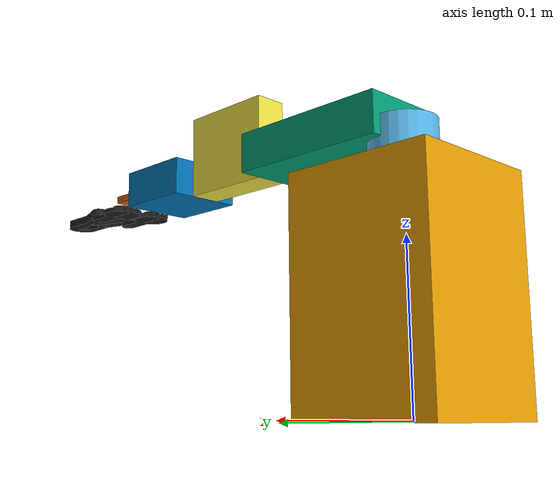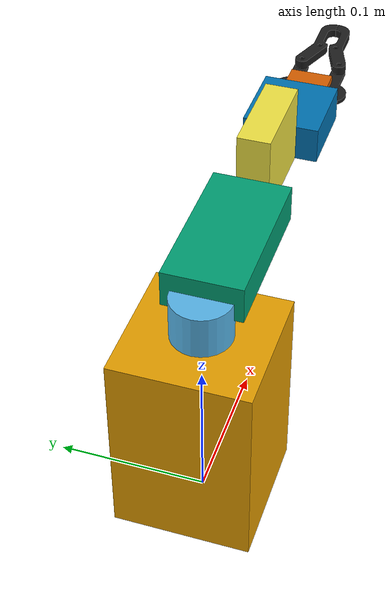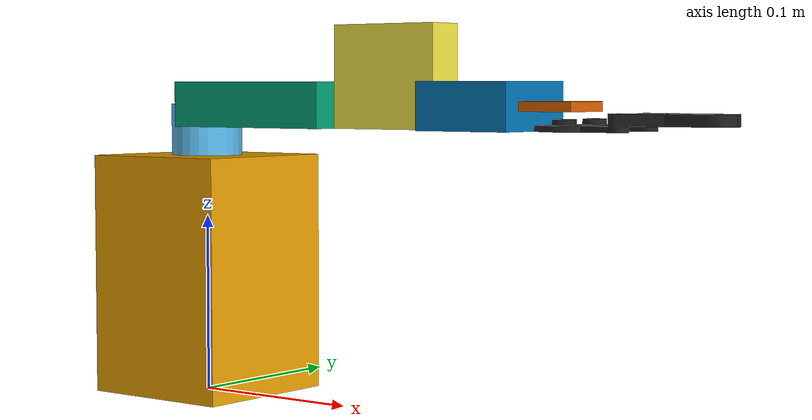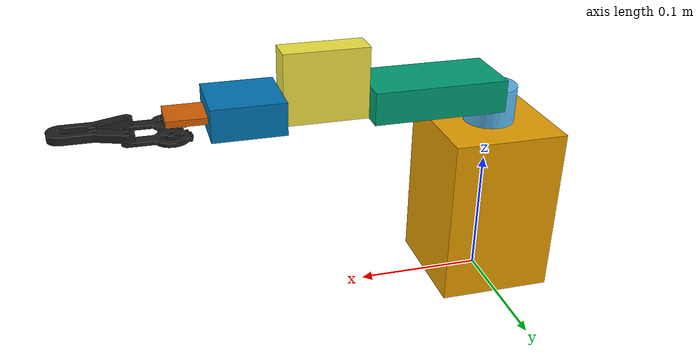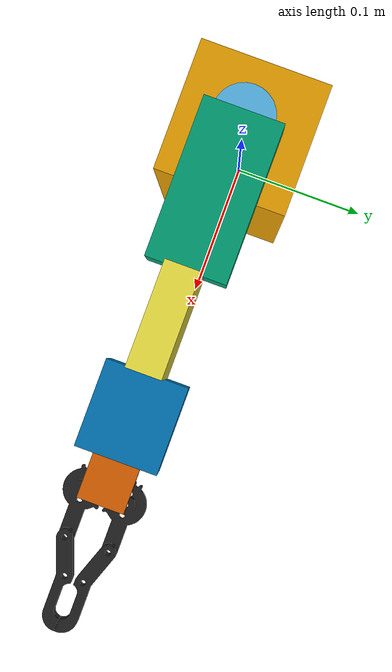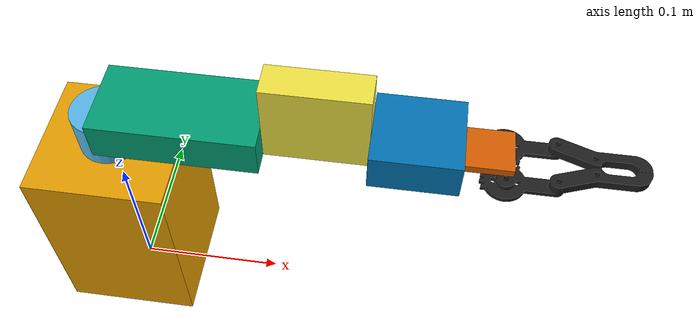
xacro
<?xml version="1.0"?>
<robot xmlns:xacro="http://www.ros.org/wiki/xacro" name="mrm">
    <xacro:arg name="initial_positions_file" default="initial_positions.yaml" />

    <!-- Import mrm urdf file -->
    <xacro:include filename="$(find arm_model)/urdf/arm.xacro" />

    <!-- Import control_xacro -->
    <xacro:include filename="mrm.ros2_control.xacro" />

    <xacro:mrm_ros2_control name="FakeSystem" initial_positions_file="$(arg initial_positions_file)"/>

</robot>

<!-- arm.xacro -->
<robot name="mrm" xmlns:xacro="http://www.ros.org/wiki/xacro">

  <!-- BGN - Include -->
  <xacro:include filename="/server_ws/src/arm_model/urdf/robot_parameters.xacro" />
  <xacro:include filename="/server_ws/src/arm_model/urdf/links_joints.xacro" />
  <!-- END - Include -->

  <!-- BGN - Robot description -->
  <xacro:m_link_box name="${link_00_name}"
    origin_rpy="0 0 0" origin_xyz="0 0 ${link_00_dim[2]/2}"
    mass="1024"
    ixx="170.667" ixy="0" ixz="0"
    iyy="170.667" iyz="0"
    izz="170.667"
    size="${link_00_dim[0]} ${link_00_dim[1]} ${link_00_dim[2]}"
  />

  <xacro:m_link_cylinder name="${link_01_name}"
    origin_rpy="0 0 0" origin_xyz="0 0 ${link_01_dim[1]/2}"
    mass="0.01"
    ixx="1.0" ixy="0" ixz="0"
    iyy="1.0" iyz="0"
    izz="1.0"
    radius="${link_01_dim[0]}" length="${link_01_dim[1]}"
  />

  <xacro:m_link_box name="${link_02_name}"
    origin_rpy="0 0 0" origin_xyz="${link_02_dim[0]/2} 0 0"
    mass="0.1"
    ixx="0.1" ixy="0" ixz="0"
    iyy="0.1" iyz="0"
    izz="0.1"
    size="${link_02_dim[0]} ${link_02_dim[1]} ${link_02_dim[2]}"
  />

  <xacro:m_link_box name="${link_03_name}"
    origin_rpy="0 0 0" origin_xyz="${link_03_dim[0]/2} 0 0"
    mass="0.1"
    ixx="0.1" ixy="0" ixz="0"
    iyy="0.1" iyz="0"
    izz="0.1"
    size="${link_03_dim[0]} ${link_03_dim[1]} ${link_03_dim[2]}"
  />

  <xacro:m_link_box name="${link_04_name}"
    origin_rpy="0 0 0" origin_xyz="${link_04_dim[0]/2} 0 0"
    mass="0.1"
    ixx="0.1" ixy="0" ixz="0"
    iyy="0.1" iyz="0"
    izz="0.1"
    size="${link_04_dim[0]} ${link_04_dim[1]} ${link_04_dim[2]}"
  />

  <xacro:m_link_box name="${link_05_name}"
    origin_rpy="0 0 0" origin_xyz="${link_05_dim[0]/2} 0 0"
    mass="0.1"
    ixx="0.1" ixy="0" ixz="0"
    iyy="0.1" iyz="0"
    izz="0.1"
    size="${link_05_dim[0]} ${link_05_dim[1]} ${link_05_dim[2]}"
  />

  <m_link_mesh name="${link_clawR_name}"
      origin_rpy="0 0 0" origin_xyz="-0.03 -0.014 -0.005"
      mass="0.1"
      ixx="0.1" ixy="0" ixz="0"
      iyy="0.1" iyz="0"
      izz="0.1"
      meshfile="package://arm_model/meshes/gripperRight.stl"
      meshscale="0.001 0.001 0.001"
  />

  <m_link_mesh name="${link_clawL_name}"
      origin_rpy="0 0 0" origin_xyz="-0.03 0.014 -0.005"
      mass="0.1"
      ixx="0.1" ixy="0" ixz="0"
      iyy="0.1" iyz="0"
      izz="0.1"
      meshfile="package://arm_model/meshes/gripperLeft.stl"
      meshscale="0.001 0.001 0.001"
  />

  <xacro:m_joint name="${link_00_name}__${link_01_name}" type="revolute"
    axis_xyz="0 0 1"
    origin_rpy="0 0 0" origin_xyz="0 0 ${link_00_dim[2]}"
    parent="${link_00_name}" child="${link_01_name}"
    limit_e="1000" limit_l="-1.5708" limit_u="1.5708" limit_v="0.5"
  />

  <xacro:m_joint name="${link_01_name}__${link_02_name}" type="revolute"
    axis_xyz="0 -1 0"
    origin_rpy="0 0 0" origin_xyz="0 0 ${link_01_dim[1]}"
    parent="${link_01_name}" child="${link_02_name}"
    limit_e="1000" limit_l="0.0" limit_u="1.5708" limit_v="0.5"
  />

  <xacro:m_joint name="${link_02_name}__${link_03_name}" type="revolute"
    axis_xyz="0 1 0"
    origin_rpy="0 0 0" origin_xyz="${link_02_dim[0]} 0 0.015"
    parent="${link_02_name}" child="${link_03_name}"
    limit_e="1000" limit_l="-1.5708" limit_u="1.5708" limit_v="0.5"
  />

  <xacro:m_joint name="${link_03_name}__${link_04_name}" type="revolute"
    axis_xyz="0 1 0"
    origin_rpy="0 0 0" origin_xyz="${link_03_dim[0]} 0 -0.015"
    parent="${link_03_name}" child="${link_04_name}"
    limit_e="1000" limit_l="-1.5708" limit_u="1.5708" limit_v="0.5"
  />

  <xacro:m_jointStatic name="${link_04_name}__${link_05_name}"
    origin_rpy="0 0 0" origin_xyz="${link_04_dim[0]} 0 0"
    parent="${link_04_name}" child="${link_05_name}"
  />

  <xacro:m_joint name="${link_05_name}__${link_clawL_name}" type="revolute"
    axis_xyz="0 0 -1"
    origin_rpy="0 0 0" origin_xyz="${link_05_dim[0]} -0.014  -0.00"
    parent="${link_05_name}" child="${link_clawL_name}"
    limit_e="1000" limit_l="0.0" limit_u="0.45" limit_v="0.5"
  />

  <xacro:m_joint name="${link_05_name}__${link_clawR_name}" type="revolute"
    axis_xyz="0 0 1"
    origin_rpy="0 0 0" origin_xyz="${link_05_dim[0]} +0.014  -0.00"
    parent="${link_05_name}" child="${link_clawR_name}"
    limit_e="1000" limit_l="0.0" limit_u="0.45" limit_v="0.5"
  />

  <!-- END - Robot description Total weight = 1373.401  ==> 13473.065N-->

    <!-- This plugin will publish the joint_states for the selected joints
            (which robot_state_publisher can then use to broadcast the approprate tf). -->

    <gazebo>
      <plugin name="gazebo_ros_joint_state_publisher" filename="libgazebo_ros_joint_state_publisher.so">
        <update_rate>20</update_rate>
        <joint_name>${link_00_name}__${link_01_name}</joint_name>
        <joint_name>${link_01_name}__${link_02_name}</joint_name>
        <joint_name>${link_03_name}__${link_04_name}</joint_name>
      </plugin>
    </gazebo>

    <!-- This plugin will read a JointTrajectory message from the /set_joint_trajectory topic
            and move the machine accordingly. It's a bit clunky but it works. -->
    <gazebo>
      <plugin name="gazebo_ros_joint_pose_trajectory"
        filename="libgazebo_ros_joint_pose_trajectory.so">
        <update_rate>2</update_rate>
      </plugin>
    </gazebo>

</robot>

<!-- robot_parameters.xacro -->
<robot xmlns:xacro="http://www.ros.org/wiki/xacro">
  <xacro:property name="link_00_name" value="base_link" />
  <xacro:property name="link_01_name" value="link_01" />
  <xacro:property name="link_02_name" value="link_02" />
  <xacro:property name="link_03_name" value="link_03" />
  <xacro:property name="link_04_name" value="link_04" />
  <xacro:property name="link_05_name" value="link_05" />

  <xacro:property name="link_clawR_name" value="link_clawR" />
  <xacro:property name="link_clawL_name" value="link_clawL" />

  <xacro:property name="link_00_dim" value="${[0.09,0.09,0.135]}" />
  <xacro:property name="link_01_dim" value="${[0.02,0.029]}" />
  <xacro:property name="link_02_dim" value="${[0.103,0.052,0.025]}" />
  <xacro:property name="link_03_dim" value="${[0.065,0.022,0.055]}" />
  <xacro:property name="link_04_dim" value="${[0.055,0.052,0.025]}" />
  <xacro:property name="link_05_dim" value="${[0.03,0.03,0.005]}" />

</robot>

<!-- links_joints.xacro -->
<robot xmlns:xacro="http://www.ros.org/wiki/xacro">

  <xacro:macro name="m_joint" params="name type axis_xyz origin_rpy origin_xyz parent child limit_e limit_l limit_u limit_v">
    <joint name="${name}" type="${type}">
      <axis xyz="${axis_xyz}" />
      <limit effort="${limit_e}" lower="${limit_l}" upper="${limit_u}" velocity="${limit_v}" />
      <origin rpy="${origin_rpy}" xyz="${origin_xyz}" />
      <parent link="${parent}" />
      <child link="${child}" />
      <dynamics damping="10.0" friction="10.0"/>
    </joint>
  </xacro:macro>

  <xacro:macro name="m_jointStatic" params="name origin_rpy origin_xyz parent child">
    <joint name="${name}" type="fixed">
      <origin rpy="${origin_rpy}" xyz="${origin_xyz}" />
      <parent link="${parent}" />
      <child link="${child}" />
    </joint>
  </xacro:macro>

  <xacro:macro name="m_link_cylinder" params="name origin_xyz origin_rpy radius length mass ixx ixy ixz iyy iyz izz">
    <link name="${name}">
      <inertial>
        <mass value="${mass}" />
        <origin rpy="${origin_rpy}" xyz="${origin_xyz}" />
        <inertia ixx="${ixx}" ixy="${ixy}" ixz="${ixz}" iyy="${iyy}" iyz="${iyz}" izz="${izz}" />
      </inertial>
      <collision>
        <origin rpy="${origin_rpy}" xyz="${origin_xyz}" />
        <geometry>
          <cylinder radius="${radius}" length="${length}" />
        </geometry>
      </collision>
      <visual>
        <origin rpy="${origin_rpy}" xyz="${origin_xyz}" />
        <geometry>
          <cylinder radius="${radius}" length="${length}" />
        </geometry>
      </visual>
    </link>
  </xacro:macro>

  <xacro:macro name="m_link_box" params="name origin_xyz origin_rpy size mass ixx ixy ixz iyy iyz izz">
    <link name="${name}">
      <inertial>
        <mass value="${mass}" />
        <origin rpy="${origin_rpy}" xyz="${origin_xyz}" />
        <inertia ixx="${ixx}" ixy="${ixy}" ixz="${ixz}" iyy="${iyy}" iyz="${iyz}" izz="${izz}" />
      </inertial>
      <collision>
        <origin rpy="${origin_rpy}" xyz="${origin_xyz}" />
        <geometry>
          <box size="${size}" />
        </geometry>
      </collision>
      <visual>
        <origin rpy="${origin_rpy}" xyz="${origin_xyz}" />
        <geometry>
          <box size="${size}" />
        </geometry>
      </visual>
    </link>
  </xacro:macro>

  <xacro:macro name="m_link_mesh" params="name origin_xyz origin_rpy meshfile meshscale mass ixx ixy ixz iyy iyz izz">
    <link name="${name}">
      <inertial>
        <mass value="${mass}" />
        <origin rpy="${origin_rpy}" xyz="${origin_xyz}" />
        <inertia ixx="${ixx}" ixy="${ixy}" ixz="${ixz}" iyy="${iyy}" iyz="${iyz}" izz="${izz}" />
      </inertial>
      <collision>
        <origin rpy="${origin_rpy}" xyz="${origin_xyz}" />
        <geometry>
          <mesh filename="${meshfile}" scale="${meshscale}"/>
        </geometry>
      </collision>
      <visual>
        <origin rpy="${origin_rpy}" xyz="${origin_xyz}" />
        <geometry>
          <mesh filename="${meshfile}" scale="${meshscale}"/>
        </geometry>
        <material name="light_black"/>
      </visual>
    </link>
  </xacro:macro>

</robot>
